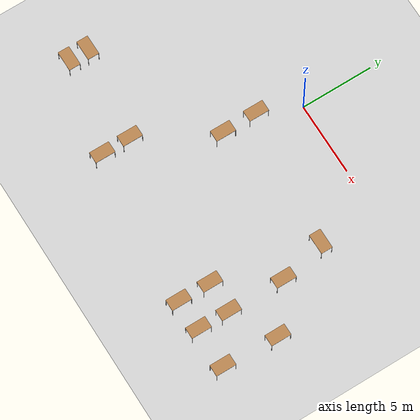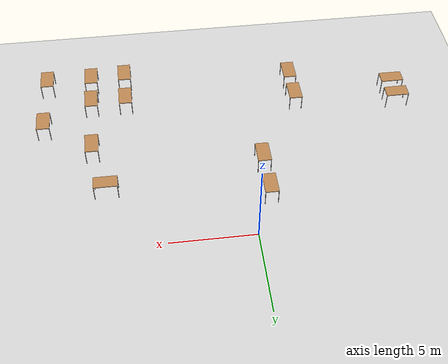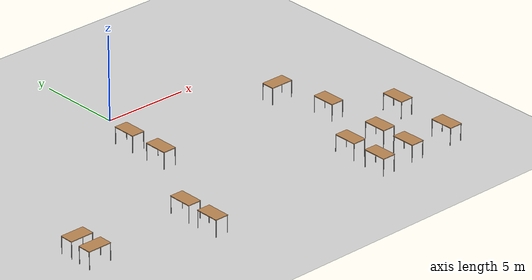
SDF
<sdf version="1.6">
 <world name="default">
  <model name="ground_plane">
   <static>1</static>
   <link name="link">
    <collision name="collision">
     <geometry><plane><normal>0 0 1</normal><size>100 100</size></plane></geometry>
     <surface><friction><ode><mu>100</mu><mu2>50</mu2></ode></friction></surface>
    </collision>
    <visual name="visual">
     <cast_shadows>0</cast_shadows>
     <geometry><plane><normal>0 0 1</normal><size>100 100</size></plane></geometry>
     <material>
      <script><uri>file://media/materials/scripts/gazebo.material</uri><name>Gazebo/Grey</name></script>
     </material>
    </visual>
   </link>
  </model>
  <model name="table_0">
   <static>0</static>
   <link name="link">
    <collision name="surface">
     <pose>0 0 1 0 -0 0</pose>
     <geometry><box><size>1.5 0.8 0.03</size></box></geometry>
     <surface><friction><ode><mu>0.6</mu><mu2>0.6</mu2></ode></friction></surface>
    </collision>
    <visual name="visual1">
     <pose>0 0 1 0 -0 0</pose>
     <geometry><box><size>1.4 0.8 0.04</size></box></geometry>
     <material>
      <script><uri>file://media/materials/scripts/gazebo.material</uri><name>Gazebo/Wood</name></script>
     </material>
    </visual>
    <collision name="front_left_leg">
     <pose>0.68 0.38 0.5 0 -0 0</pose>
     <geometry><cylinder><radius>0.02</radius><length>1</length></cylinder></geometry>
    </collision>
    <visual name="front_left_leg">
     <pose>0.68 0.38 0.5 0 -0 0</pose>
     <geometry><cylinder><radius>0.02</radius><length>1</length></cylinder></geometry>
     <material>
      <script><uri>file://media/materials/scripts/gazebo.material</uri><name>Gazebo/Grey</name></script>
     </material>
    </visual>
    <collision name="front_right_leg">
     <pose>0.68 -0.38 0.5 0 -0 0</pose>
     <geometry><cylinder><radius>0.02</radius><length>1</length></cylinder></geometry>
    </collision>
    <visual name="front_right_leg">
     <pose>0.68 -0.38 0.5 0 -0 0</pose>
     <geometry><cylinder><radius>0.02</radius><length>1</length></cylinder></geometry>
     <material>
      <script><uri>file://media/materials/scripts/gazebo.material</uri><name>Gazebo/Grey</name></script>
     </material>
    </visual>
    <collision name="back_right_leg">
     <pose>-0.68 -0.38 0.5 0 -0 0</pose>
     <geometry><cylinder><radius>0.02</radius><length>1</length></cylinder></geometry>
    </collision>
    <visual name="back_right_leg">
     <pose>-0.68 -0.38 0.5 0 -0 0</pose>
     <geometry><cylinder><radius>0.02</radius><length>1</length></cylinder></geometry>
     <material>
      <script><uri>file://media/materials/scripts/gazebo.material</uri><name>Gazebo/Grey</name></script>
     </material>
    </visual>
    <collision name="back_left_leg">
     <pose>-0.68 0.38 0.5 0 -0 0</pose>
     <geometry><cylinder><radius>0.02</radius><length>1</length></cylinder></geometry>
    </collision>
    <visual name="back_left_leg">
     <pose>-0.68 0.38 0.5 0 -0 0</pose>
     <geometry><cylinder><radius>0.02</radius><length>1</length></cylinder></geometry>
     <material>
      <script><uri>file://media/materials/scripts/gazebo.material</uri><name>Gazebo/Grey</name></script>
     </material>
    </visual>
    <inertial>
     <inertia><ixx>1</ixx><ixy>0</ixy><ixz>0</ixz><iyy>1</iyy><iyz>0</iyz><izz>1</izz></inertia>
     <mass>1</mass>
    </inertial>
   </link>
   <pose>6.803 -13.3459 -8e-06 0 -0 1.57</pose>
  </model>
  <model name="table_0_clone">
   <static>0</static>
   <link name="link">
    <collision name="surface">
     <pose>0 0 1 0 -0 0</pose>
     <geometry><box><size>1.5 0.8 0.03</size></box></geometry>
     <surface><friction><ode><mu>0.6</mu><mu2>0.6</mu2></ode></friction></surface>
    </collision>
    <visual name="visual1">
     <pose>0 0 1 0 -0 0</pose>
     <geometry><box><size>1.4 0.8 0.04</size></box></geometry>
     <material>
      <script><uri>file://media/materials/scripts/gazebo.material</uri><name>Gazebo/Wood</name></script>
     </material>
    </visual>
    <collision name="front_left_leg">
     <pose>0.68 0.38 0.5 0 -0 0</pose>
     <geometry><cylinder><radius>0.02</radius><length>1</length></cylinder></geometry>
    </collision>
    <visual name="front_left_leg">
     <pose>0.68 0.38 0.5 0 -0 0</pose>
     <geometry><cylinder><radius>0.02</radius><length>1</length></cylinder></geometry>
     <material>
      <script><uri>file://media/materials/scripts/gazebo.material</uri><name>Gazebo/Grey</name></script>
     </material>
    </visual>
    <collision name="front_right_leg">
     <pose>0.68 -0.38 0.5 0 -0 0</pose>
     <geometry><cylinder><radius>0.02</radius><length>1</length></cylinder></geometry>
    </collision>
    <visual name="front_right_leg">
     <pose>0.68 -0.38 0.5 0 -0 0</pose>
     <geometry><cylinder><radius>0.02</radius><length>1</length></cylinder></geometry>
     <material>
      <script><uri>file://media/materials/scripts/gazebo.material</uri><name>Gazebo/Grey</name></script>
     </material>
    </visual>
    <collision name="back_right_leg">
     <pose>-0.68 -0.38 0.5 0 -0 0</pose>
     <geometry><cylinder><radius>0.02</radius><length>1</length></cylinder></geometry>
    </collision>
    <visual name="back_right_leg">
     <pose>-0.68 -0.38 0.5 0 -0 0</pose>
     <geometry><cylinder><radius>0.02</radius><length>1</length></cylinder></geometry>
     <material>
      <script><uri>file://media/materials/scripts/gazebo.material</uri><name>Gazebo/Grey</name></script>
     </material>
    </visual>
    <collision name="back_left_leg">
     <pose>-0.68 0.38 0.5 0 -0 0</pose>
     <geometry><cylinder><radius>0.02</radius><length>1</length></cylinder></geometry>
    </collision>
    <visual name="back_left_leg">
     <pose>-0.68 0.38 0.5 0 -0 0</pose>
     <geometry><cylinder><radius>0.02</radius><length>1</length></cylinder></geometry>
     <material>
      <script><uri>file://media/materials/scripts/gazebo.material</uri><name>Gazebo/Grey</name></script>
     </material>
    </visual>
    <inertial>
     <inertia><ixx>1</ixx><ixy>0</ixy><ixz>0</ixz><iyy>1</iyy><iyz>0</iyz><izz>1</izz></inertia>
     <mass>1</mass>
    </inertial>
   </link>
   <pose>8.92902 -13.2599 -2e-06 -1e-06 -3e-06 1.57</pose>
  </model>
  <model name="table_0_clone_0">
   <static>0</static>
   <link name="link">
    <collision name="surface">
     <pose>0 0 1 0 -0 0</pose>
     <geometry><box><size>1.5 0.8 0.03</size></box></geometry>
     <surface><friction><ode><mu>0.6</mu><mu2>0.6</mu2></ode></friction></surface>
    </collision>
    <visual name="visual1">
     <pose>0 0 1 0 -0 0</pose>
     <geometry><box><size>1.4 0.8 0.04</size></box></geometry>
     <material>
      <script><uri>file://media/materials/scripts/gazebo.material</uri><name>Gazebo/Wood</name></script>
     </material>
    </visual>
    <collision name="front_left_leg">
     <pose>0.68 0.38 0.5 0 -0 0</pose>
     <geometry><cylinder><radius>0.02</radius><length>1</length></cylinder></geometry>
    </collision>
    <visual name="front_left_leg">
     <pose>0.68 0.38 0.5 0 -0 0</pose>
     <geometry><cylinder><radius>0.02</radius><length>1</length></cylinder></geometry>
     <material>
      <script><uri>file://media/materials/scripts/gazebo.material</uri><name>Gazebo/Grey</name></script>
     </material>
    </visual>
    <collision name="front_right_leg">
     <pose>0.68 -0.38 0.5 0 -0 0</pose>
     <geometry><cylinder><radius>0.02</radius><length>1</length></cylinder></geometry>
    </collision>
    <visual name="front_right_leg">
     <pose>0.68 -0.38 0.5 0 -0 0</pose>
     <geometry><cylinder><radius>0.02</radius><length>1</length></cylinder></geometry>
     <material>
      <script><uri>file://media/materials/scripts/gazebo.material</uri><name>Gazebo/Grey</name></script>
     </material>
    </visual>
    <collision name="back_right_leg">
     <pose>-0.68 -0.38 0.5 0 -0 0</pose>
     <geometry><cylinder><radius>0.02</radius><length>1</length></cylinder></geometry>
    </collision>
    <visual name="back_right_leg">
     <pose>-0.68 -0.38 0.5 0 -0 0</pose>
     <geometry><cylinder><radius>0.02</radius><length>1</length></cylinder></geometry>
     <material>
      <script><uri>file://media/materials/scripts/gazebo.material</uri><name>Gazebo/Grey</name></script>
     </material>
    </visual>
    <collision name="back_left_leg">
     <pose>-0.68 0.38 0.5 0 -0 0</pose>
     <geometry><cylinder><radius>0.02</radius><length>1</length></cylinder></geometry>
    </collision>
    <visual name="back_left_leg">
     <pose>-0.68 0.38 0.5 0 -0 0</pose>
     <geometry><cylinder><radius>0.02</radius><length>1</length></cylinder></geometry>
     <material>
      <script><uri>file://media/materials/scripts/gazebo.material</uri><name>Gazebo/Grey</name></script>
     </material>
    </visual>
    <inertial>
     <inertia><ixx>1</ixx><ixy>0</ixy><ixz>0</ixz><iyy>1</iyy><iyz>0</iyz><izz>1</izz></inertia>
     <mass>1</mass>
    </inertial>
   </link>
   <pose>11.713 -13.2581 -8e-06 0 -0 1.57</pose>
  </model>
  <model name="table_0_clone_0_clone">
   <static>0</static>
   <link name="link">
    <collision name="surface">
     <pose>0 0 1 0 -0 0</pose>
     <geometry><box><size>1.5 0.8 0.03</size></box></geometry>
     <surface><friction><ode><mu>0.6</mu><mu2>0.6</mu2></ode></friction></surface>
    </collision>
    <visual name="visual1">
     <pose>0 0 1 0 -0 0</pose>
     <geometry><box><size>1.4 0.8 0.04</size></box></geometry>
     <material>
      <script><uri>file://media/materials/scripts/gazebo.material</uri><name>Gazebo/Wood</name></script>
     </material>
    </visual>
    <collision name="front_left_leg">
     <pose>0.68 0.38 0.5 0 -0 0</pose>
     <geometry><cylinder><radius>0.02</radius><length>1</length></cylinder></geometry>
    </collision>
    <visual name="front_left_leg">
     <pose>0.68 0.38 0.5 0 -0 0</pose>
     <geometry><cylinder><radius>0.02</radius><length>1</length></cylinder></geometry>
     <material>
      <script><uri>file://media/materials/scripts/gazebo.material</uri><name>Gazebo/Grey</name></script>
     </material>
    </visual>
    <collision name="front_right_leg">
     <pose>0.68 -0.38 0.5 0 -0 0</pose>
     <geometry><cylinder><radius>0.02</radius><length>1</length></cylinder></geometry>
    </collision>
    <visual name="front_right_leg">
     <pose>0.68 -0.38 0.5 0 -0 0</pose>
     <geometry><cylinder><radius>0.02</radius><length>1</length></cylinder></geometry>
     <material>
      <script><uri>file://media/materials/scripts/gazebo.material</uri><name>Gazebo/Grey</name></script>
     </material>
    </visual>
    <collision name="back_right_leg">
     <pose>-0.68 -0.38 0.5 0 -0 0</pose>
     <geometry><cylinder><radius>0.02</radius><length>1</length></cylinder></geometry>
    </collision>
    <visual name="back_right_leg">
     <pose>-0.68 -0.38 0.5 0 -0 0</pose>
     <geometry><cylinder><radius>0.02</radius><length>1</length></cylinder></geometry>
     <material>
      <script><uri>file://media/materials/scripts/gazebo.material</uri><name>Gazebo/Grey</name></script>
     </material>
    </visual>
    <collision name="back_left_leg">
     <pose>-0.68 0.38 0.5 0 -0 0</pose>
     <geometry><cylinder><radius>0.02</radius><length>1</length></cylinder></geometry>
    </collision>
    <visual name="back_left_leg">
     <pose>-0.68 0.38 0.5 0 -0 0</pose>
     <geometry><cylinder><radius>0.02</radius><length>1</length></cylinder></geometry>
     <material>
      <script><uri>file://media/materials/scripts/gazebo.material</uri><name>Gazebo/Grey</name></script>
     </material>
    </visual>
    <inertial>
     <inertia><ixx>1</ixx><ixy>0</ixy><ixz>0</ixz><iyy>1</iyy><iyz>0</iyz><izz>1</izz></inertia>
     <mass>1</mass>
    </inertial>
   </link>
   <pose>11.8787 -9.43946 -1e-06 0 -1e-06 1.57164</pose>
  </model>
  <model name="table_0_clone_0_clone_0">
   <static>0</static>
   <link name="link">
    <collision name="surface">
     <pose>0 0 1 0 -0 0</pose>
     <geometry><box><size>1.5 0.8 0.03</size></box></geometry>
     <surface><friction><ode><mu>0.6</mu><mu2>0.6</mu2></ode></friction></surface>
    </collision>
    <visual name="visual1">
     <pose>0 0 1 0 -0 0</pose>
     <geometry><box><size>1.4 0.8 0.04</size></box></geometry>
     <material>
      <script><uri>file://media/materials/scripts/gazebo.material</uri><name>Gazebo/Wood</name></script>
     </material>
    </visual>
    <collision name="front_left_leg">
     <pose>0.68 0.38 0.5 0 -0 0</pose>
     <geometry><cylinder><radius>0.02</radius><length>1</length></cylinder></geometry>
    </collision>
    <visual name="front_left_leg">
     <pose>0.68 0.38 0.5 0 -0 0</pose>
     <geometry><cylinder><radius>0.02</radius><length>1</length></cylinder></geometry>
     <material>
      <script><uri>file://media/materials/scripts/gazebo.material</uri><name>Gazebo/Grey</name></script>
     </material>
    </visual>
    <collision name="front_right_leg">
     <pose>0.68 -0.38 0.5 0 -0 0</pose>
     <geometry><cylinder><radius>0.02</radius><length>1</length></cylinder></geometry>
    </collision>
    <visual name="front_right_leg">
     <pose>0.68 -0.38 0.5 0 -0 0</pose>
     <geometry><cylinder><radius>0.02</radius><length>1</length></cylinder></geometry>
     <material>
      <script><uri>file://media/materials/scripts/gazebo.material</uri><name>Gazebo/Grey</name></script>
     </material>
    </visual>
    <collision name="back_right_leg">
     <pose>-0.68 -0.38 0.5 0 -0 0</pose>
     <geometry><cylinder><radius>0.02</radius><length>1</length></cylinder></geometry>
    </collision>
    <visual name="back_right_leg">
     <pose>-0.68 -0.38 0.5 0 -0 0</pose>
     <geometry><cylinder><radius>0.02</radius><length>1</length></cylinder></geometry>
     <material>
      <script><uri>file://media/materials/scripts/gazebo.material</uri><name>Gazebo/Grey</name></script>
     </material>
    </visual>
    <collision name="back_left_leg">
     <pose>-0.68 0.38 0.5 0 -0 0</pose>
     <geometry><cylinder><radius>0.02</radius><length>1</length></cylinder></geometry>
    </collision>
    <visual name="back_left_leg">
     <pose>-0.68 0.38 0.5 0 -0 0</pose>
     <geometry><cylinder><radius>0.02</radius><length>1</length></cylinder></geometry>
     <material>
      <script><uri>file://media/materials/scripts/gazebo.material</uri><name>Gazebo/Grey</name></script>
     </material>
    </visual>
    <inertial>
     <inertia><ixx>1</ixx><ixy>0</ixy><ixz>0</ixz><iyy>1</iyy><iyz>0</iyz><izz>1</izz></inertia>
     <mass>1</mass>
    </inertial>
   </link>
   <pose>8.95502 -11.1223 -2e-06 -1e-06 -3e-06 1.57</pose>
  </model>
  <model name="table_0_clone_0_clone_0_clone">
   <static>0</static>
   <link name="link">
    <collision name="surface">
     <pose>0 0 1 0 -0 0</pose>
     <geometry><box><size>1.5 0.8 0.03</size></box></geometry>
     <surface><friction><ode><mu>0.6</mu><mu2>0.6</mu2></ode></friction></surface>
    </collision>
    <visual name="visual1">
     <pose>0 0 1 0 -0 0</pose>
     <geometry><box><size>1.4 0.8 0.04</size></box></geometry>
     <material>
      <script><uri>file://media/materials/scripts/gazebo.material</uri><name>Gazebo/Wood</name></script>
     </material>
    </visual>
    <collision name="front_left_leg">
     <pose>0.68 0.38 0.5 0 -0 0</pose>
     <geometry><cylinder><radius>0.02</radius><length>1</length></cylinder></geometry>
    </collision>
    <visual name="front_left_leg">
     <pose>0.68 0.38 0.5 0 -0 0</pose>
     <geometry><cylinder><radius>0.02</radius><length>1</length></cylinder></geometry>
     <material>
      <script><uri>file://media/materials/scripts/gazebo.material</uri><name>Gazebo/Grey</name></script>
     </material>
    </visual>
    <collision name="front_right_leg">
     <pose>0.68 -0.38 0.5 0 -0 0</pose>
     <geometry><cylinder><radius>0.02</radius><length>1</length></cylinder></geometry>
    </collision>
    <visual name="front_right_leg">
     <pose>0.68 -0.38 0.5 0 -0 0</pose>
     <geometry><cylinder><radius>0.02</radius><length>1</length></cylinder></geometry>
     <material>
      <script><uri>file://media/materials/scripts/gazebo.material</uri><name>Gazebo/Grey</name></script>
     </material>
    </visual>
    <collision name="back_right_leg">
     <pose>-0.68 -0.38 0.5 0 -0 0</pose>
     <geometry><cylinder><radius>0.02</radius><length>1</length></cylinder></geometry>
    </collision>
    <visual name="back_right_leg">
     <pose>-0.68 -0.38 0.5 0 -0 0</pose>
     <geometry><cylinder><radius>0.02</radius><length>1</length></cylinder></geometry>
     <material>
      <script><uri>file://media/materials/scripts/gazebo.material</uri><name>Gazebo/Grey</name></script>
     </material>
    </visual>
    <collision name="back_left_leg">
     <pose>-0.68 0.38 0.5 0 -0 0</pose>
     <geometry><cylinder><radius>0.02</radius><length>1</length></cylinder></geometry>
    </collision>
    <visual name="back_left_leg">
     <pose>-0.68 0.38 0.5 0 -0 0</pose>
     <geometry><cylinder><radius>0.02</radius><length>1</length></cylinder></geometry>
     <material>
      <script><uri>file://media/materials/scripts/gazebo.material</uri><name>Gazebo/Grey</name></script>
     </material>
    </visual>
    <inertial>
     <inertia><ixx>1</ixx><ixy>0</ixy><ixz>0</ixz><iyy>1</iyy><iyz>0</iyz><izz>1</izz></inertia>
     <mass>1</mass>
    </inertial>
   </link>
   <pose>6.82658 -11.1283 -8e-06 0 -0 1.57</pose>
  </model>
  <model name="table_0_clone_0_clone_0_clone_0">
   <static>0</static>
   <link name="link">
    <collision name="surface">
     <pose>0 0 1 0 -0 0</pose>
     <geometry><box><size>1.5 0.8 0.03</size></box></geometry>
     <surface><friction><ode><mu>0.6</mu><mu2>0.6</mu2></ode></friction></surface>
    </collision>
    <visual name="visual1">
     <pose>0 0 1 0 -0 0</pose>
     <geometry><box><size>1.4 0.8 0.04</size></box></geometry>
     <material>
      <script><uri>file://media/materials/scripts/gazebo.material</uri><name>Gazebo/Wood</name></script>
     </material>
    </visual>
    <collision name="front_left_leg">
     <pose>0.68 0.38 0.5 0 -0 0</pose>
     <geometry><cylinder><radius>0.02</radius><length>1</length></cylinder></geometry>
    </collision>
    <visual name="front_left_leg">
     <pose>0.68 0.38 0.5 0 -0 0</pose>
     <geometry><cylinder><radius>0.02</radius><length>1</length></cylinder></geometry>
     <material>
      <script><uri>file://media/materials/scripts/gazebo.material</uri><name>Gazebo/Grey</name></script>
     </material>
    </visual>
    <collision name="front_right_leg">
     <pose>0.68 -0.38 0.5 0 -0 0</pose>
     <geometry><cylinder><radius>0.02</radius><length>1</length></cylinder></geometry>
    </collision>
    <visual name="front_right_leg">
     <pose>0.68 -0.38 0.5 0 -0 0</pose>
     <geometry><cylinder><radius>0.02</radius><length>1</length></cylinder></geometry>
     <material>
      <script><uri>file://media/materials/scripts/gazebo.material</uri><name>Gazebo/Grey</name></script>
     </material>
    </visual>
    <collision name="back_right_leg">
     <pose>-0.68 -0.38 0.5 0 -0 0</pose>
     <geometry><cylinder><radius>0.02</radius><length>1</length></cylinder></geometry>
    </collision>
    <visual name="back_right_leg">
     <pose>-0.68 -0.38 0.5 0 -0 0</pose>
     <geometry><cylinder><radius>0.02</radius><length>1</length></cylinder></geometry>
     <material>
      <script><uri>file://media/materials/scripts/gazebo.material</uri><name>Gazebo/Grey</name></script>
     </material>
    </visual>
    <collision name="back_left_leg">
     <pose>-0.68 0.38 0.5 0 -0 0</pose>
     <geometry><cylinder><radius>0.02</radius><length>1</length></cylinder></geometry>
    </collision>
    <visual name="back_left_leg">
     <pose>-0.68 0.38 0.5 0 -0 0</pose>
     <geometry><cylinder><radius>0.02</radius><length>1</length></cylinder></geometry>
     <material>
      <script><uri>file://media/materials/scripts/gazebo.material</uri><name>Gazebo/Grey</name></script>
     </material>
    </visual>
    <inertial>
     <inertia><ixx>1</ixx><ixy>0</ixy><ixz>0</ixz><iyy>1</iyy><iyz>0</iyz><izz>1</izz></inertia>
     <mass>1</mass>
    </inertial>
   </link>
   <pose>8.979 -7.20182 -2e-06 -1e-06 -3e-06 1.57</pose>
  </model>
  <model name="table_3">
   <static>0</static>
   <link name="link">
    <collision name="surface">
     <pose>0 0 1 0 -0 0</pose>
     <geometry><box><size>1.5 0.8 0.03</size></box></geometry>
     <surface><friction><ode><mu>0.6</mu><mu2>0.6</mu2></ode></friction></surface>
    </collision>
    <visual name="visual1">
     <pose>0 0 1 0 -0 0</pose>
     <geometry><box><size>1.4 0.8 0.04</size></box></geometry>
     <material>
      <script><uri>file://media/materials/scripts/gazebo.material</uri><name>Gazebo/Wood</name></script>
     </material>
    </visual>
    <collision name="front_left_leg">
     <pose>0.68 0.38 0.5 0 -0 0</pose>
     <geometry><cylinder><radius>0.02</radius><length>1</length></cylinder></geometry>
    </collision>
    <visual name="front_left_leg">
     <pose>0.68 0.38 0.5 0 -0 0</pose>
     <geometry><cylinder><radius>0.02</radius><length>1</length></cylinder></geometry>
     <material>
      <script><uri>file://media/materials/scripts/gazebo.material</uri><name>Gazebo/Grey</name></script>
     </material>
    </visual>
    <collision name="front_right_leg">
     <pose>0.68 -0.38 0.5 0 -0 0</pose>
     <geometry><cylinder><radius>0.02</radius><length>1</length></cylinder></geometry>
    </collision>
    <visual name="front_right_leg">
     <pose>0.68 -0.38 0.5 0 -0 0</pose>
     <geometry><cylinder><radius>0.02</radius><length>1</length></cylinder></geometry>
     <material>
      <script><uri>file://media/materials/scripts/gazebo.material</uri><name>Gazebo/Grey</name></script>
     </material>
    </visual>
    <collision name="back_right_leg">
     <pose>-0.68 -0.38 0.5 0 -0 0</pose>
     <geometry><cylinder><radius>0.02</radius><length>1</length></cylinder></geometry>
    </collision>
    <visual name="back_right_leg">
     <pose>-0.68 -0.38 0.5 0 -0 0</pose>
     <geometry><cylinder><radius>0.02</radius><length>1</length></cylinder></geometry>
     <material>
      <script><uri>file://media/materials/scripts/gazebo.material</uri><name>Gazebo/Grey</name></script>
     </material>
    </visual>
    <collision name="back_left_leg">
     <pose>-0.68 0.38 0.5 0 -0 0</pose>
     <geometry><cylinder><radius>0.02</radius><length>1</length></cylinder></geometry>
    </collision>
    <visual name="back_left_leg">
     <pose>-0.68 0.38 0.5 0 -0 0</pose>
     <geometry><cylinder><radius>0.02</radius><length>1</length></cylinder></geometry>
     <material>
      <script><uri>file://media/materials/scripts/gazebo.material</uri><name>Gazebo/Grey</name></script>
     </material>
    </visual>
    <inertial>
     <inertia><ixx>1</ixx><ixy>0</ixy><ixz>0</ixz><iyy>1</iyy><iyz>0</iyz><izz>1</izz></inertia>
     <mass>1</mass>
    </inertial>
   </link>
   <pose>-10.2158 -9.49094 -1e-06 0 1e-06 0</pose>
  </model>
  <model name="table_3_clone">
   <static>0</static>
   <link name="link">
    <collision name="surface">
     <pose>0 0 1 0 -0 0</pose>
     <geometry><box><size>1.5 0.8 0.03</size></box></geometry>
     <surface><friction><ode><mu>0.6</mu><mu2>0.6</mu2></ode></friction></surface>
    </collision>
    <visual name="visual1">
     <pose>0 0 1 0 -0 0</pose>
     <geometry><box><size>1.4 0.8 0.04</size></box></geometry>
     <material>
      <script><uri>file://media/materials/scripts/gazebo.material</uri><name>Gazebo/Wood</name></script>
     </material>
    </visual>
    <collision name="front_left_leg">
     <pose>0.68 0.38 0.5 0 -0 0</pose>
     <geometry><cylinder><radius>0.02</radius><length>1</length></cylinder></geometry>
    </collision>
    <visual name="front_left_leg">
     <pose>0.68 0.38 0.5 0 -0 0</pose>
     <geometry><cylinder><radius>0.02</radius><length>1</length></cylinder></geometry>
     <material>
      <script><uri>file://media/materials/scripts/gazebo.material</uri><name>Gazebo/Grey</name></script>
     </material>
    </visual>
    <collision name="front_right_leg">
     <pose>0.68 -0.38 0.5 0 -0 0</pose>
     <geometry><cylinder><radius>0.02</radius><length>1</length></cylinder></geometry>
    </collision>
    <visual name="front_right_leg">
     <pose>0.68 -0.38 0.5 0 -0 0</pose>
     <geometry><cylinder><radius>0.02</radius><length>1</length></cylinder></geometry>
     <material>
      <script><uri>file://media/materials/scripts/gazebo.material</uri><name>Gazebo/Grey</name></script>
     </material>
    </visual>
    <collision name="back_right_leg">
     <pose>-0.68 -0.38 0.5 0 -0 0</pose>
     <geometry><cylinder><radius>0.02</radius><length>1</length></cylinder></geometry>
    </collision>
    <visual name="back_right_leg">
     <pose>-0.68 -0.38 0.5 0 -0 0</pose>
     <geometry><cylinder><radius>0.02</radius><length>1</length></cylinder></geometry>
     <material>
      <script><uri>file://media/materials/scripts/gazebo.material</uri><name>Gazebo/Grey</name></script>
     </material>
    </visual>
    <collision name="back_left_leg">
     <pose>-0.68 0.38 0.5 0 -0 0</pose>
     <geometry><cylinder><radius>0.02</radius><length>1</length></cylinder></geometry>
    </collision>
    <visual name="back_left_leg">
     <pose>-0.68 0.38 0.5 0 -0 0</pose>
     <geometry><cylinder><radius>0.02</radius><length>1</length></cylinder></geometry>
     <material>
      <script><uri>file://media/materials/scripts/gazebo.material</uri><name>Gazebo/Grey</name></script>
     </material>
    </visual>
    <inertial>
     <inertia><ixx>1</ixx><ixy>0</ixy><ixz>0</ixz><iyy>1</iyy><iyz>0</iyz><izz>1</izz></inertia>
     <mass>1</mass>
    </inertial>
   </link>
   <pose>-10.218 -10.8466 -9e-06 0 -1e-06 0</pose>
  </model>
  <model name="table_3_clone_clone">
   <static>0</static>
   <link name="link">
    <collision name="surface">
     <pose>0 0 1 0 -0 0</pose>
     <geometry><box><size>1.5 0.8 0.03</size></box></geometry>
     <surface><friction><ode><mu>0.6</mu><mu2>0.6</mu2></ode></friction></surface>
    </collision>
    <visual name="visual1">
     <pose>0 0 1 0 -0 0</pose>
     <geometry><box><size>1.4 0.8 0.04</size></box></geometry>
     <material>
      <script><uri>file://media/materials/scripts/gazebo.material</uri><name>Gazebo/Wood</name></script>
     </material>
    </visual>
    <collision name="front_left_leg">
     <pose>0.68 0.38 0.5 0 -0 0</pose>
     <geometry><cylinder><radius>0.02</radius><length>1</length></cylinder></geometry>
    </collision>
    <visual name="front_left_leg">
     <pose>0.68 0.38 0.5 0 -0 0</pose>
     <geometry><cylinder><radius>0.02</radius><length>1</length></cylinder></geometry>
     <material>
      <script><uri>file://media/materials/scripts/gazebo.material</uri><name>Gazebo/Grey</name></script>
     </material>
    </visual>
    <collision name="front_right_leg">
     <pose>0.68 -0.38 0.5 0 -0 0</pose>
     <geometry><cylinder><radius>0.02</radius><length>1</length></cylinder></geometry>
    </collision>
    <visual name="front_right_leg">
     <pose>0.68 -0.38 0.5 0 -0 0</pose>
     <geometry><cylinder><radius>0.02</radius><length>1</length></cylinder></geometry>
     <material>
      <script><uri>file://media/materials/scripts/gazebo.material</uri><name>Gazebo/Grey</name></script>
     </material>
    </visual>
    <collision name="back_right_leg">
     <pose>-0.68 -0.38 0.5 0 -0 0</pose>
     <geometry><cylinder><radius>0.02</radius><length>1</length></cylinder></geometry>
    </collision>
    <visual name="back_right_leg">
     <pose>-0.68 -0.38 0.5 0 -0 0</pose>
     <geometry><cylinder><radius>0.02</radius><length>1</length></cylinder></geometry>
     <material>
      <script><uri>file://media/materials/scripts/gazebo.material</uri><name>Gazebo/Grey</name></script>
     </material>
    </visual>
    <collision name="back_left_leg">
     <pose>-0.68 0.38 0.5 0 -0 0</pose>
     <geometry><cylinder><radius>0.02</radius><length>1</length></cylinder></geometry>
    </collision>
    <visual name="back_left_leg">
     <pose>-0.68 0.38 0.5 0 -0 0</pose>
     <geometry><cylinder><radius>0.02</radius><length>1</length></cylinder></geometry>
     <material>
      <script><uri>file://media/materials/scripts/gazebo.material</uri><name>Gazebo/Grey</name></script>
     </material>
    </visual>
    <inertial>
     <inertia><ixx>1</ixx><ixy>0</ixy><ixz>0</ixz><iyy>1</iyy><iyz>0</iyz><izz>1</izz></inertia>
     <mass>1</mass>
    </inertial>
   </link>
   <pose>-3.81621 -10.3254 -2e-06 -1e-06 -3e-06 1.57001</pose>
  </model>
  <model name="table_3_clone_clone_clone">
   <static>0</static>
   <link name="link">
    <collision name="surface">
     <pose>0 0 1 0 -0 0</pose>
     <geometry><box><size>1.5 0.8 0.03</size></box></geometry>
     <surface><friction><ode><mu>0.6</mu><mu2>0.6</mu2></ode></friction></surface>
    </collision>
    <visual name="visual1">
     <pose>0 0 1 0 -0 0</pose>
     <geometry><box><size>1.4 0.8 0.04</size></box></geometry>
     <material>
      <script><uri>file://media/materials/scripts/gazebo.material</uri><name>Gazebo/Wood</name></script>
     </material>
    </visual>
    <collision name="front_left_leg">
     <pose>0.68 0.38 0.5 0 -0 0</pose>
     <geometry><cylinder><radius>0.02</radius><length>1</length></cylinder></geometry>
    </collision>
    <visual name="front_left_leg">
     <pose>0.68 0.38 0.5 0 -0 0</pose>
     <geometry><cylinder><radius>0.02</radius><length>1</length></cylinder></geometry>
     <material>
      <script><uri>file://media/materials/scripts/gazebo.material</uri><name>Gazebo/Grey</name></script>
     </material>
    </visual>
    <collision name="front_right_leg">
     <pose>0.68 -0.38 0.5 0 -0 0</pose>
     <geometry><cylinder><radius>0.02</radius><length>1</length></cylinder></geometry>
    </collision>
    <visual name="front_right_leg">
     <pose>0.68 -0.38 0.5 0 -0 0</pose>
     <geometry><cylinder><radius>0.02</radius><length>1</length></cylinder></geometry>
     <material>
      <script><uri>file://media/materials/scripts/gazebo.material</uri><name>Gazebo/Grey</name></script>
     </material>
    </visual>
    <collision name="back_right_leg">
     <pose>-0.68 -0.38 0.5 0 -0 0</pose>
     <geometry><cylinder><radius>0.02</radius><length>1</length></cylinder></geometry>
    </collision>
    <visual name="back_right_leg">
     <pose>-0.68 -0.38 0.5 0 -0 0</pose>
     <geometry><cylinder><radius>0.02</radius><length>1</length></cylinder></geometry>
     <material>
      <script><uri>file://media/materials/scripts/gazebo.material</uri><name>Gazebo/Grey</name></script>
     </material>
    </visual>
    <collision name="back_left_leg">
     <pose>-0.68 0.38 0.5 0 -0 0</pose>
     <geometry><cylinder><radius>0.02</radius><length>1</length></cylinder></geometry>
    </collision>
    <visual name="back_left_leg">
     <pose>-0.68 0.38 0.5 0 -0 0</pose>
     <geometry><cylinder><radius>0.02</radius><length>1</length></cylinder></geometry>
     <material>
      <script><uri>file://media/materials/scripts/gazebo.material</uri><name>Gazebo/Grey</name></script>
     </material>
    </visual>
    <inertial>
     <inertia><ixx>1</ixx><ixy>0</ixy><ixz>0</ixz><iyy>1</iyy><iyz>0</iyz><izz>1</izz></inertia>
     <mass>1</mass>
    </inertial>
   </link>
   <pose>-3.79172 -12.3358 -1e-06 -0 -1e-06 1.57001</pose>
  </model>
  <model name="table_3_clone_clone_clone_0">
   <static>0</static>
   <link name="link">
    <collision name="surface">
     <pose>0 0 1 0 -0 0</pose>
     <geometry><box><size>1.5 0.8 0.03</size></box></geometry>
     <surface><friction><ode><mu>0.6</mu><mu2>0.6</mu2></ode></friction></surface>
    </collision>
    <visual name="visual1">
     <pose>0 0 1 0 -0 0</pose>
     <geometry><box><size>1.4 0.8 0.04</size></box></geometry>
     <material>
      <script><uri>file://media/materials/scripts/gazebo.material</uri><name>Gazebo/Wood</name></script>
     </material>
    </visual>
    <collision name="front_left_leg">
     <pose>0.68 0.38 0.5 0 -0 0</pose>
     <geometry><cylinder><radius>0.02</radius><length>1</length></cylinder></geometry>
    </collision>
    <visual name="front_left_leg">
     <pose>0.68 0.38 0.5 0 -0 0</pose>
     <geometry><cylinder><radius>0.02</radius><length>1</length></cylinder></geometry>
     <material>
      <script><uri>file://media/materials/scripts/gazebo.material</uri><name>Gazebo/Grey</name></script>
     </material>
    </visual>
    <collision name="front_right_leg">
     <pose>0.68 -0.38 0.5 0 -0 0</pose>
     <geometry><cylinder><radius>0.02</radius><length>1</length></cylinder></geometry>
    </collision>
    <visual name="front_right_leg">
     <pose>0.68 -0.38 0.5 0 -0 0</pose>
     <geometry><cylinder><radius>0.02</radius><length>1</length></cylinder></geometry>
     <material>
      <script><uri>file://media/materials/scripts/gazebo.material</uri><name>Gazebo/Grey</name></script>
     </material>
    </visual>
    <collision name="back_right_leg">
     <pose>-0.68 -0.38 0.5 0 -0 0</pose>
     <geometry><cylinder><radius>0.02</radius><length>1</length></cylinder></geometry>
    </collision>
    <visual name="back_right_leg">
     <pose>-0.68 -0.38 0.5 0 -0 0</pose>
     <geometry><cylinder><radius>0.02</radius><length>1</length></cylinder></geometry>
     <material>
      <script><uri>file://media/materials/scripts/gazebo.material</uri><name>Gazebo/Grey</name></script>
     </material>
    </visual>
    <collision name="back_left_leg">
     <pose>-0.68 0.38 0.5 0 -0 0</pose>
     <geometry><cylinder><radius>0.02</radius><length>1</length></cylinder></geometry>
    </collision>
    <visual name="back_left_leg">
     <pose>-0.68 0.38 0.5 0 -0 0</pose>
     <geometry><cylinder><radius>0.02</radius><length>1</length></cylinder></geometry>
     <material>
      <script><uri>file://media/materials/scripts/gazebo.material</uri><name>Gazebo/Grey</name></script>
     </material>
    </visual>
    <inertial>
     <inertia><ixx>1</ixx><ixy>0</ixy><ixz>0</ixz><iyy>1</iyy><iyz>0</iyz><izz>1</izz></inertia>
     <mass>1</mass>
    </inertial>
   </link>
   <pose>-1.06808 -2.82716 -1e-06 -0 -1e-06 1.57001</pose>
  </model>
  <model name="table_3_clone_clone_clone_0_clone">
   <static>0</static>
   <link name="link">
    <collision name="surface">
     <pose>0 0 1 0 -0 0</pose>
     <geometry><box><size>1.5 0.8 0.03</size></box></geometry>
     <surface><friction><ode><mu>0.6</mu><mu2>0.6</mu2></ode></friction></surface>
    </collision>
    <visual name="visual1">
     <pose>0 0 1 0 -0 0</pose>
     <geometry><box><size>1.4 0.8 0.04</size></box></geometry>
     <material>
      <script><uri>file://media/materials/scripts/gazebo.material</uri><name>Gazebo/Wood</name></script>
     </material>
    </visual>
    <collision name="front_left_leg">
     <pose>0.68 0.38 0.5 0 -0 0</pose>
     <geometry><cylinder><radius>0.02</radius><length>1</length></cylinder></geometry>
    </collision>
    <visual name="front_left_leg">
     <pose>0.68 0.38 0.5 0 -0 0</pose>
     <geometry><cylinder><radius>0.02</radius><length>1</length></cylinder></geometry>
     <material>
      <script><uri>file://media/materials/scripts/gazebo.material</uri><name>Gazebo/Grey</name></script>
     </material>
    </visual>
    <collision name="front_right_leg">
     <pose>0.68 -0.38 0.5 0 -0 0</pose>
     <geometry><cylinder><radius>0.02</radius><length>1</length></cylinder></geometry>
    </collision>
    <visual name="front_right_leg">
     <pose>0.68 -0.38 0.5 0 -0 0</pose>
     <geometry><cylinder><radius>0.02</radius><length>1</length></cylinder></geometry>
     <material>
      <script><uri>file://media/materials/scripts/gazebo.material</uri><name>Gazebo/Grey</name></script>
     </material>
    </visual>
    <collision name="back_right_leg">
     <pose>-0.68 -0.38 0.5 0 -0 0</pose>
     <geometry><cylinder><radius>0.02</radius><length>1</length></cylinder></geometry>
    </collision>
    <visual name="back_right_leg">
     <pose>-0.68 -0.38 0.5 0 -0 0</pose>
     <geometry><cylinder><radius>0.02</radius><length>1</length></cylinder></geometry>
     <material>
      <script><uri>file://media/materials/scripts/gazebo.material</uri><name>Gazebo/Grey</name></script>
     </material>
    </visual>
    <collision name="back_left_leg">
     <pose>-0.68 0.38 0.5 0 -0 0</pose>
     <geometry><cylinder><radius>0.02</radius><length>1</length></cylinder></geometry>
    </collision>
    <visual name="back_left_leg">
     <pose>-0.68 0.38 0.5 0 -0 0</pose>
     <geometry><cylinder><radius>0.02</radius><length>1</length></cylinder></geometry>
     <material>
      <script><uri>file://media/materials/scripts/gazebo.material</uri><name>Gazebo/Grey</name></script>
     </material>
    </visual>
    <inertial>
     <inertia><ixx>1</ixx><ixy>0</ixy><ixz>0</ixz><iyy>1</iyy><iyz>0</iyz><izz>1</izz></inertia>
     <mass>1</mass>
    </inertial>
   </link>
   <pose>-1.03399 -5.26338 -1e-06 -0 -1e-06 1.57001</pose>
  </model>
  <model name="table_1_clone_0">
   <static>0</static>
   <link name="link">
    <collision name="surface">
     <pose>0 0 1 0 -0 0</pose>
     <geometry><box><size>1.5 0.8 0.03</size></box></geometry>
     <surface><friction><ode><mu>0.6</mu><mu2>0.6</mu2></ode></friction></surface>
    </collision>
    <visual name="visual1">
     <pose>0 0 1 0 -0 0</pose>
     <geometry><box><size>1.4 0.8 0.04</size></box></geometry>
     <material>
      <script><uri>file://media/materials/scripts/gazebo.material</uri><name>Gazebo/Wood</name></script>
     </material>
    </visual>
    <collision name="front_left_leg">
     <pose>0.68 0.38 0.5 0 -0 0</pose>
     <geometry><cylinder><radius>0.02</radius><length>1</length></cylinder></geometry>
    </collision>
    <visual name="front_left_leg">
     <pose>0.68 0.38 0.5 0 -0 0</pose>
     <geometry><cylinder><radius>0.02</radius><length>1</length></cylinder></geometry>
     <material>
      <script><uri>file://media/materials/scripts/gazebo.material</uri><name>Gazebo/Grey</name></script>
     </material>
    </visual>
    <collision name="front_right_leg">
     <pose>0.68 -0.38 0.5 0 -0 0</pose>
     <geometry><cylinder><radius>0.02</radius><length>1</length></cylinder></geometry>
    </collision>
    <visual name="front_right_leg">
     <pose>0.68 -0.38 0.5 0 -0 0</pose>
     <geometry><cylinder><radius>0.02</radius><length>1</length></cylinder></geometry>
     <material>
      <script><uri>file://media/materials/scripts/gazebo.material</uri><name>Gazebo/Grey</name></script>
     </material>
    </visual>
    <collision name="back_right_leg">
     <pose>-0.68 -0.38 0.5 0 -0 0</pose>
     <geometry><cylinder><radius>0.02</radius><length>1</length></cylinder></geometry>
    </collision>
    <visual name="back_right_leg">
     <pose>-0.68 -0.38 0.5 0 -0 0</pose>
     <geometry><cylinder><radius>0.02</radius><length>1</length></cylinder></geometry>
     <material>
      <script><uri>file://media/materials/scripts/gazebo.material</uri><name>Gazebo/Grey</name></script>
     </material>
    </visual>
    <collision name="back_left_leg">
     <pose>-0.68 0.38 0.5 0 -0 0</pose>
     <geometry><cylinder><radius>0.02</radius><length>1</length></cylinder></geometry>
    </collision>
    <visual name="back_left_leg">
     <pose>-0.68 0.38 0.5 0 -0 0</pose>
     <geometry><cylinder><radius>0.02</radius><length>1</length></cylinder></geometry>
     <material>
      <script><uri>file://media/materials/scripts/gazebo.material</uri><name>Gazebo/Grey</name></script>
     </material>
    </visual>
    <inertial>
     <inertia><ixx>1</ixx><ixy>0</ixy><ixz>0</ixz><iyy>1</iyy><iyz>0</iyz><izz>1</izz></inertia>
     <mass>1</mass>
    </inertial>
   </link>
   <pose>8.23817 -4.02749 -2e-06 0 -0 0</pose>
  </model>
 </world>
</sdf>
